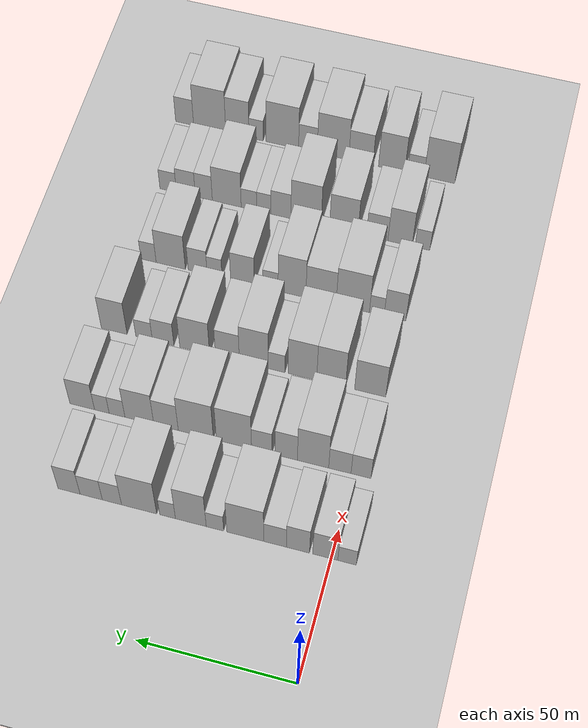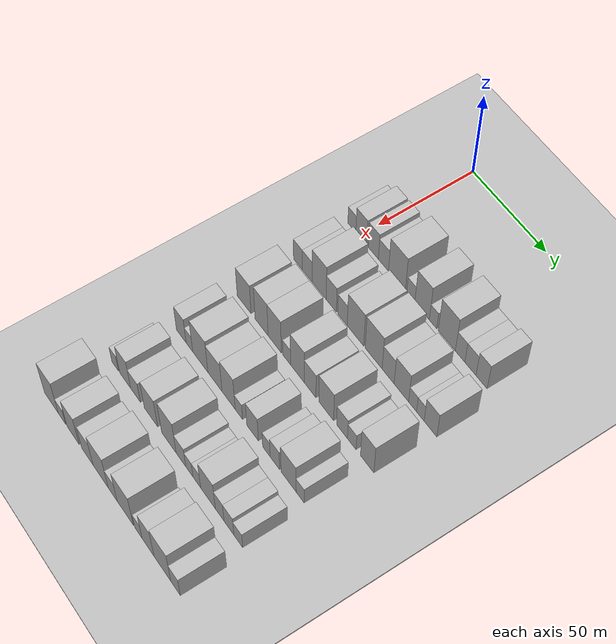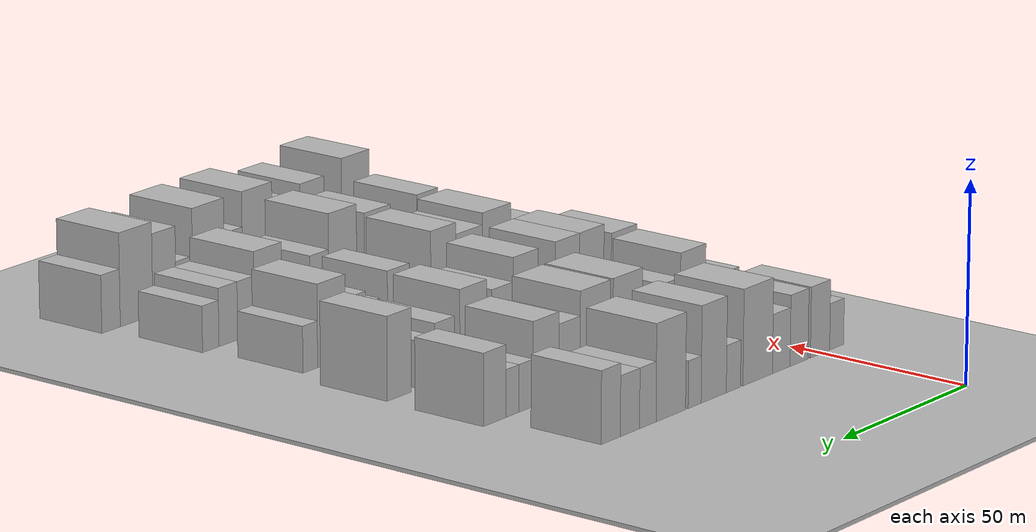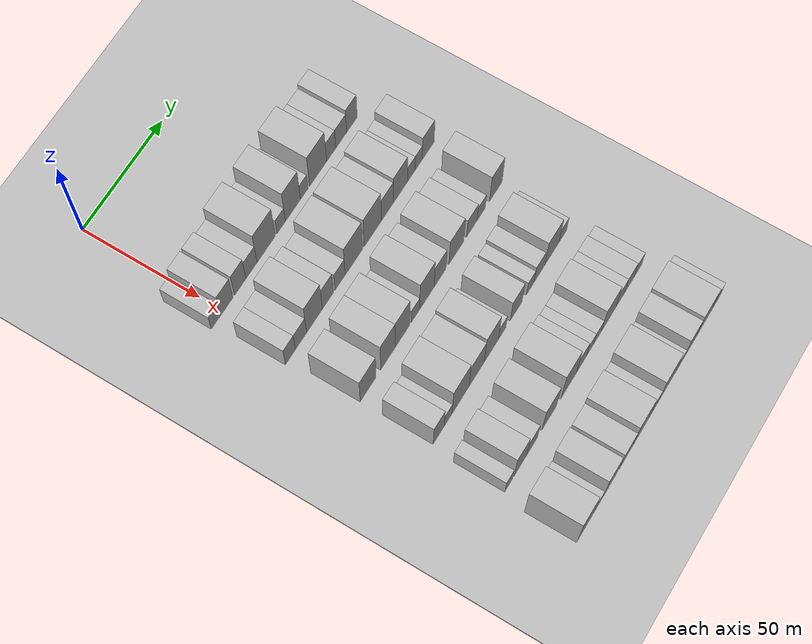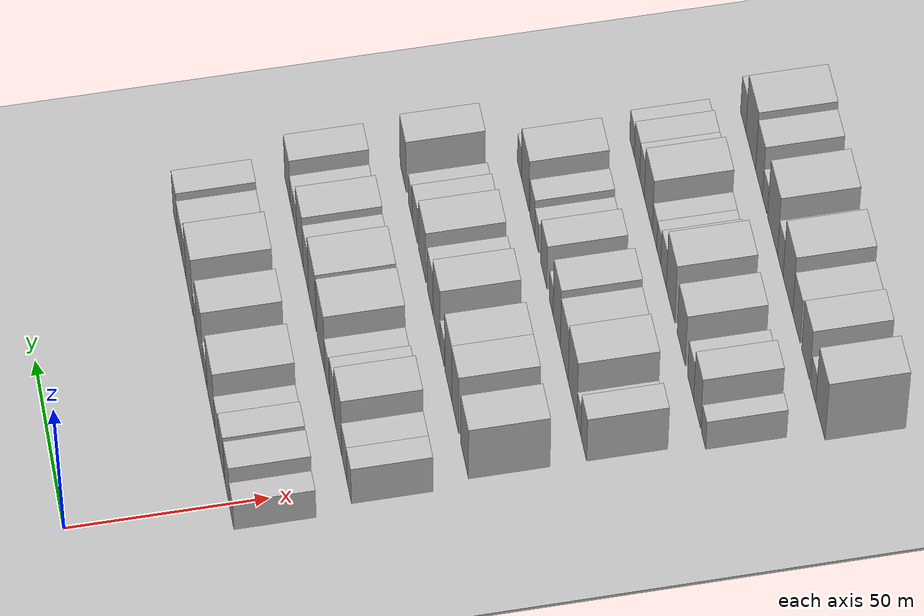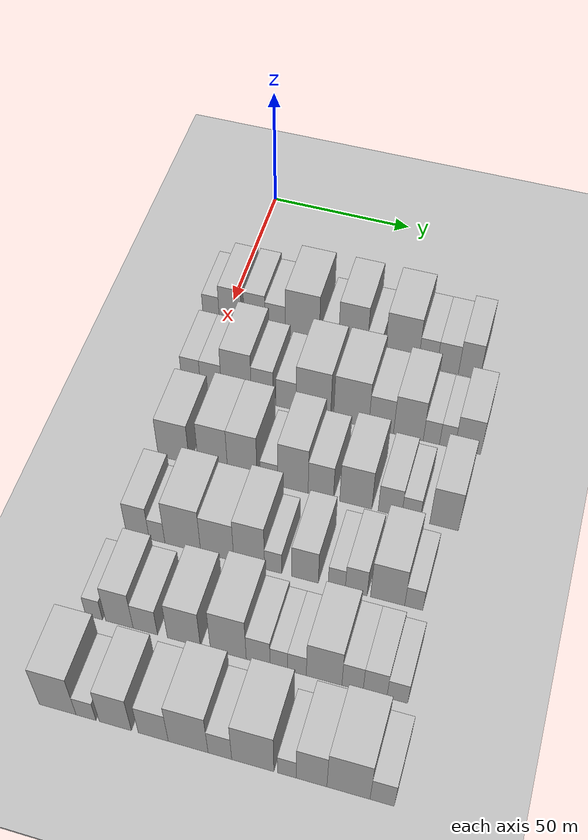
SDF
<sdf version="1.6">
 <world name="default">
  <include><name>ground_plane_1</name><uri>model://HANNAS_ground_plane</uri></include>
  <include>
   <name>ground_plane_2</name>
   <uri>model://HANNAS_ground_plane</uri>
   <pose>100 0 0  0 0 0</pose>
  </include>
  <model name="building_57">
   <static>1</static>
   <pose>50.0000 -4.9211 0 0.000000 0.000000 0.000000</pose>
   <link name="link">
    <pose>0 0 6.00 0 0 0</pose>
    <collision name="collision"><geometry><box><size>20.0000 5.8130 12.0000</size></box></geometry></collision>
    <visual name="visual">
     <cast_shadows>0</cast_shadows>
     <geometry><box><size>20.0000 5.8130 12.0000</size></box></geometry>
     <material>
      <script>
       <uri>model://HANNAS_wall/materials/scripts</uri>
       <uri>model://HANNAS_wall/materials/textures</uri>
       <name>vrc/HANNAS_wall</name>
      </script>
     </material>
    </visual>
   </link>
  </model>
  <model name="building_58">
   <static>1</static>
   <pose>50.0000 1.9506 0 0.000000 0.000000 0.000000</pose>
   <link name="link">
    <pose>0 0 9.00 0 0 0</pose>
    <collision name="collision"><geometry><box><size>20.0000 7.9304 18.0000</size></box></geometry></collision>
    <visual name="visual">
     <cast_shadows>0</cast_shadows>
     <geometry><box><size>20.0000 7.9304 18.0000</size></box></geometry>
     <material>
      <script>
       <uri>model://HANNAS_wall/materials/scripts</uri>
       <uri>model://HANNAS_wall/materials/textures</uri>
       <name>vrc/HANNAS_wall</name>
      </script>
     </material>
    </visual>
   </link>
  </model>
  <model name="building_59">
   <static>1</static>
   <pose>50.0000 10.5817 0 0.000000 0.000000 0.000000</pose>
   <link name="link">
    <pose>0 0 9.00 0 0 0</pose>
    <collision name="collision"><geometry><box><size>20.0000 7.3317 18.0000</size></box></geometry></collision>
    <visual name="visual">
     <cast_shadows>0</cast_shadows>
     <geometry><box><size>20.0000 7.3317 18.0000</size></box></geometry>
     <material>
      <script>
       <uri>model://HANNAS_wall/materials/scripts</uri>
       <uri>model://HANNAS_wall/materials/textures</uri>
       <name>vrc/HANNAS_wall</name>
      </script>
     </material>
    </visual>
   </link>
  </model>
  <model name="building_60">
   <static>1</static>
   <pose>50.0000 17.8337 0 0.000000 0.000000 0.000000</pose>
   <link name="link">
    <pose>0 0 7.50 0 0 0</pose>
    <collision name="collision"><geometry><box><size>20.0000 7.1722 15.0000</size></box></geometry></collision>
    <visual name="visual">
     <cast_shadows>0</cast_shadows>
     <geometry><box><size>20.0000 7.1722 15.0000</size></box></geometry>
     <material>
      <script>
       <uri>model://HANNAS_wall/materials/scripts</uri>
       <uri>model://HANNAS_wall/materials/textures</uri>
       <name>vrc/HANNAS_wall</name>
      </script>
     </material>
    </visual>
   </link>
  </model>
  <model name="building_61">
   <static>1</static>
   <pose>50.0000 27.3216 0 0.000000 0.000000 0.000000</pose>
   <link name="link">
    <pose>0 0 12.00 0 0 0</pose>
    <collision name="collision"><geometry><box><size>20.0000 11.8038 24.0000</size></box></geometry></collision>
    <visual name="visual">
     <cast_shadows>0</cast_shadows>
     <geometry><box><size>20.0000 11.8038 24.0000</size></box></geometry>
     <material>
      <script>
       <uri>model://HANNAS_wall/materials/scripts</uri>
       <uri>model://HANNAS_wall/materials/textures</uri>
       <name>vrc/HANNAS_wall</name>
      </script>
     </material>
    </visual>
   </link>
  </model>
  <model name="building_62">
   <static>1</static>
   <pose>50.0000 37.0348 0 0.000000 0.000000 0.000000</pose>
   <link name="link">
    <pose>0 0 6.00 0 0 0</pose>
    <collision name="collision"><geometry><box><size>20.0000 5.6224 12.0000</size></box></geometry></collision>
    <visual name="visual">
     <cast_shadows>0</cast_shadows>
     <geometry><box><size>20.0000 5.6224 12.0000</size></box></geometry>
     <material>
      <script>
       <uri>model://HANNAS_wall/materials/scripts</uri>
       <uri>model://HANNAS_wall/materials/textures</uri>
       <name>vrc/HANNAS_wall</name>
      </script>
     </material>
    </visual>
   </link>
  </model>
  <model name="building_63">
   <static>1</static>
   <pose>50.0000 44.8088 0 0.000000 0.000000 0.000000</pose>
   <link name="link">
    <pose>0 0 12.00 0 0 0</pose>
    <collision name="collision"><geometry><box><size>20.0000 9.9257 24.0000</size></box></geometry></collision>
    <visual name="visual">
     <cast_shadows>0</cast_shadows>
     <geometry><box><size>20.0000 9.9257 24.0000</size></box></geometry>
     <material>
      <script>
       <uri>model://HANNAS_wall/materials/scripts</uri>
       <uri>model://HANNAS_wall/materials/textures</uri>
       <name>vrc/HANNAS_wall</name>
      </script>
     </material>
    </visual>
   </link>
  </model>
  <model name="building_64">
   <static>1</static>
   <pose>50.0000 52.3100 0 0.000000 0.000000 0.000000</pose>
   <link name="link">
    <pose>0 0 6.00 0 0 0</pose>
    <collision name="collision"><geometry><box><size>20.0000 5.0767 12.0000</size></box></geometry></collision>
    <visual name="visual">
     <cast_shadows>0</cast_shadows>
     <geometry><box><size>20.0000 5.0767 12.0000</size></box></geometry>
     <material>
      <script>
       <uri>model://HANNAS_wall/materials/scripts</uri>
       <uri>model://HANNAS_wall/materials/textures</uri>
       <name>vrc/HANNAS_wall</name>
      </script>
     </material>
    </visual>
   </link>
  </model>
  <model name="building_65">
   <static>1</static>
   <pose>50.0000 61.5633 0 0.000000 0.000000 0.000000</pose>
   <link name="link">
    <pose>0 0 12.00 0 0 0</pose>
    <collision name="collision"><geometry><box><size>20.0000 11.4299 24.0000</size></box></geometry></collision>
    <visual name="visual">
     <cast_shadows>0</cast_shadows>
     <geometry><box><size>20.0000 11.4299 24.0000</size></box></geometry>
     <material>
      <script>
       <uri>model://HANNAS_wall/materials/scripts</uri>
       <uri>model://HANNAS_wall/materials/textures</uri>
       <name>vrc/HANNAS_wall</name>
      </script>
     </material>
    </visual>
   </link>
  </model>
  <model name="building_66">
   <static>1</static>
   <pose>50.0000 70.4179 0 0.000000 0.000000 0.000000</pose>
   <link name="link">
    <pose>0 0 7.50 0 0 0</pose>
    <collision name="collision"><geometry><box><size>20.0000 6.2793 15.0000</size></box></geometry></collision>
    <visual name="visual">
     <cast_shadows>0</cast_shadows>
     <geometry><box><size>20.0000 6.2793 15.0000</size></box></geometry>
     <material>
      <script>
       <uri>model://HANNAS_wall/materials/scripts</uri>
       <uri>model://HANNAS_wall/materials/textures</uri>
       <name>vrc/HANNAS_wall</name>
      </script>
     </material>
    </visual>
   </link>
  </model>
  <model name="building_67">
   <static>1</static>
   <pose>50.0000 77.2101 0 0.000000 0.000000 0.000000</pose>
   <link name="link">
    <pose>0 0 7.50 0 0 0</pose>
    <collision name="collision"><geometry><box><size>20.0000 7.3051 15.0000</size></box></geometry></collision>
    <visual name="visual">
     <cast_shadows>0</cast_shadows>
     <geometry><box><size>20.0000 7.3051 15.0000</size></box></geometry>
     <material>
      <script>
       <uri>model://HANNAS_wall/materials/scripts</uri>
       <uri>model://HANNAS_wall/materials/textures</uri>
       <name>vrc/HANNAS_wall</name>
      </script>
     </material>
    </visual>
   </link>
  </model>
  <model name="building_68">
   <static>1</static>
   <pose>50.0000 84.4827 0 0.000000 0.000000 0.000000</pose>
   <link name="link">
    <pose>0 0 9.00 0 0 0</pose>
    <collision name="collision"><geometry><box><size>20.0000 7.2401 18.0000</size></box></geometry></collision>
    <visual name="visual">
     <cast_shadows>0</cast_shadows>
     <geometry><box><size>20.0000 7.2401 18.0000</size></box></geometry>
     <material>
      <script>
       <uri>model://HANNAS_wall/materials/scripts</uri>
       <uri>model://HANNAS_wall/materials/textures</uri>
       <name>vrc/HANNAS_wall</name>
      </script>
     </material>
    </visual>
   </link>
  </model>
  <model name="building_172">
   <static>1</static>
   <pose>79.0000 -2.2111 0 0.000000 0.000000 0.000000</pose>
   <link name="link">
    <pose>0 0 7.50 0 0 0</pose>
    <collision name="collision"><geometry><box><size>20.0000 6.4304 15.0000</size></box></geometry></collision>
    <visual name="visual">
     <cast_shadows>0</cast_shadows>
     <geometry><box><size>20.0000 6.4304 15.0000</size></box></geometry>
     <material>
      <script>
       <uri>model://HANNAS_wall/materials/scripts</uri>
       <uri>model://HANNAS_wall/materials/textures</uri>
       <name>vrc/HANNAS_wall</name>
      </script>
     </material>
    </visual>
   </link>
  </model>
  <model name="building_173">
   <static>1</static>
   <pose>79.0000 4.6303 0 0.000000 0.000000 0.000000</pose>
   <link name="link">
    <pose>0 0 7.50 0 0 0</pose>
    <collision name="collision"><geometry><box><size>20.0000 7.2525 15.0000</size></box></geometry></collision>
    <visual name="visual">
     <cast_shadows>0</cast_shadows>
     <geometry><box><size>20.0000 7.2525 15.0000</size></box></geometry>
     <material>
      <script>
       <uri>model://HANNAS_wall/materials/scripts</uri>
       <uri>model://HANNAS_wall/materials/textures</uri>
       <name>vrc/HANNAS_wall</name>
      </script>
     </material>
    </visual>
   </link>
  </model>
  <model name="building_174">
   <static>1</static>
   <pose>79.0000 13.3536 0 0.000000 0.000000 0.000000</pose>
   <link name="link">
    <pose>0 0 12.00 0 0 0</pose>
    <collision name="collision"><geometry><box><size>20.0000 10.1941 24.0000</size></box></geometry></collision>
    <visual name="visual">
     <cast_shadows>0</cast_shadows>
     <geometry><box><size>20.0000 10.1941 24.0000</size></box></geometry>
     <material>
      <script>
       <uri>model://HANNAS_wall/materials/scripts</uri>
       <uri>model://HANNAS_wall/materials/textures</uri>
       <name>vrc/HANNAS_wall</name>
      </script>
     </material>
    </visual>
   </link>
  </model>
  <model name="building_175">
   <static>1</static>
   <pose>79.0000 22.0993 0 0.000000 0.000000 0.000000</pose>
   <link name="link">
    <pose>0 0 9.00 0 0 0</pose>
    <collision name="collision"><geometry><box><size>20.0000 7.2972 18.0000</size></box></geometry></collision>
    <visual name="visual">
     <cast_shadows>0</cast_shadows>
     <geometry><box><size>20.0000 7.2972 18.0000</size></box></geometry>
     <material>
      <script>
       <uri>model://HANNAS_wall/materials/scripts</uri>
       <uri>model://HANNAS_wall/materials/textures</uri>
       <name>vrc/HANNAS_wall</name>
      </script>
     </material>
    </visual>
   </link>
  </model>
  <model name="building_176">
   <static>1</static>
   <pose>79.0000 30.0986 0 0.000000 0.000000 0.000000</pose>
   <link name="link">
    <pose>0 0 7.50 0 0 0</pose>
    <collision name="collision"><geometry><box><size>20.0000 6.7013 15.0000</size></box></geometry></collision>
    <visual name="visual">
     <cast_shadows>0</cast_shadows>
     <geometry><box><size>20.0000 6.7013 15.0000</size></box></geometry>
     <material>
      <script>
       <uri>model://HANNAS_wall/materials/scripts</uri>
       <uri>model://HANNAS_wall/materials/textures</uri>
       <name>vrc/HANNAS_wall</name>
      </script>
     </material>
    </visual>
   </link>
  </model>
  <model name="building_177">
   <static>1</static>
   <pose>79.0000 39.2421 0 0.000000 0.000000 0.000000</pose>
   <link name="link">
    <pose>0 0 12.00 0 0 0</pose>
    <collision name="collision"><geometry><box><size>20.0000 11.5858 24.0000</size></box></geometry></collision>
    <visual name="visual">
     <cast_shadows>0</cast_shadows>
     <geometry><box><size>20.0000 11.5858 24.0000</size></box></geometry>
     <material>
      <script>
       <uri>model://HANNAS_wall/materials/scripts</uri>
       <uri>model://HANNAS_wall/materials/textures</uri>
       <name>vrc/HANNAS_wall</name>
      </script>
     </material>
    </visual>
   </link>
  </model>
  <model name="building_178">
   <static>1</static>
   <pose>79.0000 51.8660 0 0.000000 0.000000 0.000000</pose>
   <link name="link">
    <pose>0 0 12.00 0 0 0</pose>
    <collision name="collision"><geometry><box><size>20.0000 11.6620 24.0000</size></box></geometry></collision>
    <visual name="visual">
     <cast_shadows>0</cast_shadows>
     <geometry><box><size>20.0000 11.6620 24.0000</size></box></geometry>
     <material>
      <script>
       <uri>model://HANNAS_wall/materials/scripts</uri>
       <uri>model://HANNAS_wall/materials/textures</uri>
       <name>vrc/HANNAS_wall</name>
      </script>
     </material>
    </visual>
   </link>
  </model>
  <model name="building_179">
   <static>1</static>
   <pose>79.0000 61.7775 0 0.000000 0.000000 0.000000</pose>
   <link name="link">
    <pose>0 0 9.00 0 0 0</pose>
    <collision name="collision"><geometry><box><size>20.0000 8.1610 18.0000</size></box></geometry></collision>
    <visual name="visual">
     <cast_shadows>0</cast_shadows>
     <geometry><box><size>20.0000 8.1610 18.0000</size></box></geometry>
     <material>
      <script>
       <uri>model://HANNAS_wall/materials/scripts</uri>
       <uri>model://HANNAS_wall/materials/textures</uri>
       <name>vrc/HANNAS_wall</name>
      </script>
     </material>
    </visual>
   </link>
  </model>
  <model name="building_180">
   <static>1</static>
   <pose>79.0000 70.7115 0 0.000000 0.000000 0.000000</pose>
   <link name="link">
    <pose>0 0 10.50 0 0 0</pose>
    <collision name="collision"><geometry><box><size>20.0000 9.7070 21.0000</size></box></geometry></collision>
    <visual name="visual">
     <cast_shadows>0</cast_shadows>
     <geometry><box><size>20.0000 9.7070 21.0000</size></box></geometry>
     <material>
      <script>
       <uri>model://HANNAS_wall/materials/scripts</uri>
       <uri>model://HANNAS_wall/materials/textures</uri>
       <name>vrc/HANNAS_wall</name>
      </script>
     </material>
    </visual>
   </link>
  </model>
  <model name="building_181">
   <static>1</static>
   <pose>79.0000 78.2167 0 0.000000 0.000000 0.000000</pose>
   <link name="link">
    <pose>0 0 6.00 0 0 0</pose>
    <collision name="collision"><geometry><box><size>20.0000 5.3035 12.0000</size></box></geometry></collision>
    <visual name="visual">
     <cast_shadows>0</cast_shadows>
     <geometry><box><size>20.0000 5.3035 12.0000</size></box></geometry>
     <material>
      <script>
       <uri>model://HANNAS_wall/materials/scripts</uri>
       <uri>model://HANNAS_wall/materials/textures</uri>
       <name>vrc/HANNAS_wall</name>
      </script>
     </material>
    </visual>
   </link>
  </model>
  <model name="building_182">
   <static>1</static>
   <pose>79.0000 83.3363 0 0.000000 0.000000 0.000000</pose>
   <link name="link">
    <pose>0 0 6.00 0 0 0</pose>
    <collision name="collision"><geometry><box><size>20.0000 4.9357 12.0000</size></box></geometry></collision>
    <visual name="visual">
     <cast_shadows>0</cast_shadows>
     <geometry><box><size>20.0000 4.9357 12.0000</size></box></geometry>
     <material>
      <script>
       <uri>model://HANNAS_wall/materials/scripts</uri>
       <uri>model://HANNAS_wall/materials/textures</uri>
       <name>vrc/HANNAS_wall</name>
      </script>
     </material>
    </visual>
   </link>
  </model>
  <model name="building_183">
   <static>1</static>
   <pose>79.0000 89.9729 0 0.000000 0.000000 0.000000</pose>
   <link name="link">
    <pose>0 0 9.00 0 0 0</pose>
    <collision name="collision"><geometry><box><size>20.0000 8.3376 18.0000</size></box></geometry></collision>
    <visual name="visual">
     <cast_shadows>0</cast_shadows>
     <geometry><box><size>20.0000 8.3376 18.0000</size></box></geometry>
     <material>
      <script>
       <uri>model://HANNAS_wall/materials/scripts</uri>
       <uri>model://HANNAS_wall/materials/textures</uri>
       <name>vrc/HANNAS_wall</name>
      </script>
     </material>
    </visual>
   </link>
  </model>
  <model name="building_287">
   <static>1</static>
   <pose>108.0000 1.8354 0 0.000000 0.000000 0.000000</pose>
   <link name="link">
    <pose>0 0 10.50 0 0 0</pose>
    <collision name="collision"><geometry><box><size>20.0000 10.3521 21.0000</size></box></geometry></collision>
    <visual name="visual">
     <cast_shadows>0</cast_shadows>
     <geometry><box><size>20.0000 10.3521 21.0000</size></box></geometry>
     <material>
      <script>
       <uri>model://HANNAS_wall/materials/scripts</uri>
       <uri>model://HANNAS_wall/materials/textures</uri>
       <name>vrc/HANNAS_wall</name>
      </script>
     </material>
    </visual>
   </link>
  </model>
  <model name="building_288">
   <static>1</static>
   <pose>108.0000 14.8336 0 0.000000 0.000000 0.000000</pose>
   <link name="link">
    <pose>0 0 12.00 0 0 0</pose>
    <collision name="collision"><geometry><box><size>20.0000 9.6443 24.0000</size></box></geometry></collision>
    <visual name="visual">
     <cast_shadows>0</cast_shadows>
     <geometry><box><size>20.0000 9.6443 24.0000</size></box></geometry>
     <material>
      <script>
       <uri>model://HANNAS_wall/materials/scripts</uri>
       <uri>model://HANNAS_wall/materials/textures</uri>
       <name>vrc/HANNAS_wall</name>
      </script>
     </material>
    </visual>
   </link>
  </model>
  <model name="building_289">
   <static>1</static>
   <pose>108.0000 24.4687 0 0.000000 0.000000 0.000000</pose>
   <link name="link">
    <pose>0 0 12.00 0 0 0</pose>
    <collision name="collision"><geometry><box><size>20.0000 9.6258 24.0000</size></box></geometry></collision>
    <visual name="visual">
     <cast_shadows>0</cast_shadows>
     <geometry><box><size>20.0000 9.6258 24.0000</size></box></geometry>
     <material>
      <script>
       <uri>model://HANNAS_wall/materials/scripts</uri>
       <uri>model://HANNAS_wall/materials/textures</uri>
       <name>vrc/HANNAS_wall</name>
      </script>
     </material>
    </visual>
   </link>
  </model>
  <model name="building_290">
   <static>1</static>
   <pose>108.0000 33.1079 0 0.000000 0.000000 0.000000</pose>
   <link name="link">
    <pose>0 0 6.00 0 0 0</pose>
    <collision name="collision"><geometry><box><size>20.0000 5.6525 12.0000</size></box></geometry></collision>
    <visual name="visual">
     <cast_shadows>0</cast_shadows>
     <geometry><box><size>20.0000 5.6525 12.0000</size></box></geometry>
     <material>
      <script>
       <uri>model://HANNAS_wall/materials/scripts</uri>
       <uri>model://HANNAS_wall/materials/textures</uri>
       <name>vrc/HANNAS_wall</name>
      </script>
     </material>
    </visual>
   </link>
  </model>
  <model name="building_291">
   <static>1</static>
   <pose>108.0000 40.8225 0 0.000000 0.000000 0.000000</pose>
   <link name="link">
    <pose>0 0 12.00 0 0 0</pose>
    <collision name="collision"><geometry><box><size>20.0000 9.7766 24.0000</size></box></geometry></collision>
    <visual name="visual">
     <cast_shadows>0</cast_shadows>
     <geometry><box><size>20.0000 9.7766 24.0000</size></box></geometry>
     <material>
      <script>
       <uri>model://HANNAS_wall/materials/scripts</uri>
       <uri>model://HANNAS_wall/materials/textures</uri>
       <name>vrc/HANNAS_wall</name>
      </script>
     </material>
    </visual>
   </link>
  </model>
  <model name="building_292">
   <static>1</static>
   <pose>108.0000 49.7684 0 0.000000 0.000000 0.000000</pose>
   <link name="link">
    <pose>0 0 9.00 0 0 0</pose>
    <collision name="collision"><geometry><box><size>20.0000 8.1152 18.0000</size></box></geometry></collision>
    <visual name="visual">
     <cast_shadows>0</cast_shadows>
     <geometry><box><size>20.0000 8.1152 18.0000</size></box></geometry>
     <material>
      <script>
       <uri>model://HANNAS_wall/materials/scripts</uri>
       <uri>model://HANNAS_wall/materials/textures</uri>
       <name>vrc/HANNAS_wall</name>
      </script>
     </material>
    </visual>
   </link>
  </model>
  <model name="building_293">
   <static>1</static>
   <pose>108.0000 60.9286 0 0.000000 0.000000 0.000000</pose>
   <link name="link">
    <pose>0 0 10.50 0 0 0</pose>
    <collision name="collision"><geometry><box><size>20.0000 10.2053 21.0000</size></box></geometry></collision>
    <visual name="visual">
     <cast_shadows>0</cast_shadows>
     <geometry><box><size>20.0000 10.2053 21.0000</size></box></geometry>
     <material>
      <script>
       <uri>model://HANNAS_wall/materials/scripts</uri>
       <uri>model://HANNAS_wall/materials/textures</uri>
       <name>vrc/HANNAS_wall</name>
      </script>
     </material>
    </visual>
   </link>
  </model>
  <model name="building_294">
   <static>1</static>
   <pose>108.0000 71.7322 0 0.000000 0.000000 0.000000</pose>
   <link name="link">
    <pose>0 0 7.50 0 0 0</pose>
    <collision name="collision"><geometry><box><size>20.0000 7.4018 15.0000</size></box></geometry></collision>
    <visual name="visual">
     <cast_shadows>0</cast_shadows>
     <geometry><box><size>20.0000 7.4018 15.0000</size></box></geometry>
     <material>
      <script>
       <uri>model://HANNAS_wall/materials/scripts</uri>
       <uri>model://HANNAS_wall/materials/textures</uri>
       <name>vrc/HANNAS_wall</name>
      </script>
     </material>
    </visual>
   </link>
  </model>
  <model name="building_295">
   <static>1</static>
   <pose>108.0000 78.3007 0 0.000000 0.000000 0.000000</pose>
   <link name="link">
    <pose>0 0 6.00 0 0 0</pose>
    <collision name="collision"><geometry><box><size>20.0000 5.7353 12.0000</size></box></geometry></collision>
    <visual name="visual">
     <cast_shadows>0</cast_shadows>
     <geometry><box><size>20.0000 5.7353 12.0000</size></box></geometry>
     <material>
      <script>
       <uri>model://HANNAS_wall/materials/scripts</uri>
       <uri>model://HANNAS_wall/materials/textures</uri>
       <name>vrc/HANNAS_wall</name>
      </script>
     </material>
    </visual>
   </link>
  </model>
  <model name="building_296">
   <static>1</static>
   <pose>108.0000 88.6247 0 0.000000 0.000000 0.000000</pose>
   <link name="link">
    <pose>0 0 10.50 0 0 0</pose>
    <collision name="collision"><geometry><box><size>20.0000 8.9126 21.0000</size></box></geometry></collision>
    <visual name="visual">
     <cast_shadows>0</cast_shadows>
     <geometry><box><size>20.0000 8.9126 21.0000</size></box></geometry>
     <material>
      <script>
       <uri>model://HANNAS_wall/materials/scripts</uri>
       <uri>model://HANNAS_wall/materials/textures</uri>
       <name>vrc/HANNAS_wall</name>
      </script>
     </material>
    </visual>
   </link>
  </model>
  <model name="building_400">
   <static>1</static>
   <pose>137.0000 0.3842 0 0.000000 0.000000 0.000000</pose>
   <link name="link">
    <pose>0 0 9.00 0 0 0</pose>
    <collision name="collision"><geometry><box><size>20.0000 7.3610 18.0000</size></box></geometry></collision>
    <visual name="visual">
     <cast_shadows>0</cast_shadows>
     <geometry><box><size>20.0000 7.3610 18.0000</size></box></geometry>
     <material>
      <script>
       <uri>model://HANNAS_wall/materials/scripts</uri>
       <uri>model://HANNAS_wall/materials/textures</uri>
       <name>vrc/HANNAS_wall</name>
      </script>
     </material>
    </visual>
   </link>
  </model>
  <model name="building_401">
   <static>1</static>
   <pose>137.0000 6.5764 0 0.000000 0.000000 0.000000</pose>
   <link name="link">
    <pose>0 0 6.00 0 0 0</pose>
    <collision name="collision"><geometry><box><size>20.0000 5.0234 12.0000</size></box></geometry></collision>
    <visual name="visual">
     <cast_shadows>0</cast_shadows>
     <geometry><box><size>20.0000 5.0234 12.0000</size></box></geometry>
     <material>
      <script>
       <uri>model://HANNAS_wall/materials/scripts</uri>
       <uri>model://HANNAS_wall/materials/textures</uri>
       <name>vrc/HANNAS_wall</name>
      </script>
     </material>
    </visual>
   </link>
  </model>
  <model name="building_402">
   <static>1</static>
   <pose>137.0000 14.7842 0 0.000000 0.000000 0.000000</pose>
   <link name="link">
    <pose>0 0 12.00 0 0 0</pose>
    <collision name="collision"><geometry><box><size>20.0000 11.3921 24.0000</size></box></geometry></collision>
    <visual name="visual">
     <cast_shadows>0</cast_shadows>
     <geometry><box><size>20.0000 11.3921 24.0000</size></box></geometry>
     <material>
      <script>
       <uri>model://HANNAS_wall/materials/scripts</uri>
       <uri>model://HANNAS_wall/materials/textures</uri>
       <name>vrc/HANNAS_wall</name>
      </script>
     </material>
    </visual>
   </link>
  </model>
  <model name="building_403">
   <static>1</static>
   <pose>137.0000 25.6810 0 0.000000 0.000000 0.000000</pose>
   <link name="link">
    <pose>0 0 10.50 0 0 0</pose>
    <collision name="collision"><geometry><box><size>20.0000 10.4016 21.0000</size></box></geometry></collision>
    <visual name="visual">
     <cast_shadows>0</cast_shadows>
     <geometry><box><size>20.0000 10.4016 21.0000</size></box></geometry>
     <material>
      <script>
       <uri>model://HANNAS_wall/materials/scripts</uri>
       <uri>model://HANNAS_wall/materials/textures</uri>
       <name>vrc/HANNAS_wall</name>
      </script>
     </material>
    </visual>
   </link>
  </model>
  <model name="building_404">
   <static>1</static>
   <pose>137.0000 35.6866 0 0.000000 0.000000 0.000000</pose>
   <link name="link">
    <pose>0 0 12.00 0 0 0</pose>
    <collision name="collision"><geometry><box><size>20.0000 9.6096 24.0000</size></box></geometry></collision>
    <visual name="visual">
     <cast_shadows>0</cast_shadows>
     <geometry><box><size>20.0000 9.6096 24.0000</size></box></geometry>
     <material>
      <script>
       <uri>model://HANNAS_wall/materials/scripts</uri>
       <uri>model://HANNAS_wall/materials/textures</uri>
       <name>vrc/HANNAS_wall</name>
      </script>
     </material>
    </visual>
   </link>
  </model>
  <model name="building_405">
   <static>1</static>
   <pose>137.0000 43.1371 0 0.000000 0.000000 0.000000</pose>
   <link name="link">
    <pose>0 0 6.00 0 0 0</pose>
    <collision name="collision"><geometry><box><size>20.0000 5.2912 12.0000</size></box></geometry></collision>
    <visual name="visual">
     <cast_shadows>0</cast_shadows>
     <geometry><box><size>20.0000 5.2912 12.0000</size></box></geometry>
     <material>
      <script>
       <uri>model://HANNAS_wall/materials/scripts</uri>
       <uri>model://HANNAS_wall/materials/textures</uri>
       <name>vrc/HANNAS_wall</name>
      </script>
     </material>
    </visual>
   </link>
  </model>
  <model name="building_406">
   <static>1</static>
   <pose>137.0000 52.9089 0 0.000000 0.000000 0.000000</pose>
   <link name="link">
    <pose>0 0 9.00 0 0 0</pose>
    <collision name="collision"><geometry><box><size>20.0000 8.2525 18.0000</size></box></geometry></collision>
    <visual name="visual">
     <cast_shadows>0</cast_shadows>
     <geometry><box><size>20.0000 8.2525 18.0000</size></box></geometry>
     <material>
      <script>
       <uri>model://HANNAS_wall/materials/scripts</uri>
       <uri>model://HANNAS_wall/materials/textures</uri>
       <name>vrc/HANNAS_wall</name>
      </script>
     </material>
    </visual>
   </link>
  </model>
  <model name="building_407">
   <static>1</static>
   <pose>137.0000 62.6436 0 0.000000 0.000000 0.000000</pose>
   <link name="link">
    <pose>0 0 6.00 0 0 0</pose>
    <collision name="collision"><geometry><box><size>20.0000 5.2169 12.0000</size></box></geometry></collision>
    <visual name="visual">
     <cast_shadows>0</cast_shadows>
     <geometry><box><size>20.0000 5.2169 12.0000</size></box></geometry>
     <material>
      <script>
       <uri>model://HANNAS_wall/materials/scripts</uri>
       <uri>model://HANNAS_wall/materials/textures</uri>
       <name>vrc/HANNAS_wall</name>
      </script>
     </material>
    </visual>
   </link>
  </model>
  <model name="building_408">
   <static>1</static>
   <pose>137.0000 68.5719 0 0.000000 0.000000 0.000000</pose>
   <link name="link">
    <pose>0 0 7.50 0 0 0</pose>
    <collision name="collision"><geometry><box><size>20.0000 6.6396 15.0000</size></box></geometry></collision>
    <visual name="visual">
     <cast_shadows>0</cast_shadows>
     <geometry><box><size>20.0000 6.6396 15.0000</size></box></geometry>
     <material>
      <script>
       <uri>model://HANNAS_wall/materials/scripts</uri>
       <uri>model://HANNAS_wall/materials/textures</uri>
       <name>vrc/HANNAS_wall</name>
      </script>
     </material>
    </visual>
   </link>
  </model>
  <model name="building_409">
   <static>1</static>
   <pose>137.0000 78.0478 0 0.000000 0.000000 0.000000</pose>
   <link name="link">
    <pose>0 0 10.50 0 0 0</pose>
    <collision name="collision"><geometry><box><size>20.0000 10.3122 21.0000</size></box></geometry></collision>
    <visual name="visual">
     <cast_shadows>0</cast_shadows>
     <geometry><box><size>20.0000 10.3122 21.0000</size></box></geometry>
     <material>
      <script>
       <uri>model://HANNAS_wall/materials/scripts</uri>
       <uri>model://HANNAS_wall/materials/textures</uri>
       <name>vrc/HANNAS_wall</name>
      </script>
     </material>
    </visual>
   </link>
  </model>
  <model name="building_410">
   <static>1</static>
   <pose>137.0000 85.9129 0 0.000000 0.000000 0.000000</pose>
   <link name="link">
    <pose>0 0 6.00 0 0 0</pose>
    <collision name="collision"><geometry><box><size>20.0000 5.4180 12.0000</size></box></geometry></collision>
    <visual name="visual">
     <cast_shadows>0</cast_shadows>
     <geometry><box><size>20.0000 5.4180 12.0000</size></box></geometry>
     <material>
      <script>
       <uri>model://HANNAS_wall/materials/scripts</uri>
       <uri>model://HANNAS_wall/materials/textures</uri>
       <name>vrc/HANNAS_wall</name>
      </script>
     </material>
    </visual>
   </link>
  </model>
  <model name="building_516">
   <static>1</static>
   <pose>166.0000 -2.4247 0 0.000000 0.000000 0.000000</pose>
   <link name="link">
    <pose>0 0 6.00 0 0 0</pose>
    <collision name="collision"><geometry><box><size>20.0000 5.1727 12.0000</size></box></geometry></collision>
    <visual name="visual">
     <cast_shadows>0</cast_shadows>
     <geometry><box><size>20.0000 5.1727 12.0000</size></box></geometry>
     <material>
      <script>
       <uri>model://HANNAS_wall/materials/scripts</uri>
       <uri>model://HANNAS_wall/materials/textures</uri>
       <name>vrc/HANNAS_wall</name>
      </script>
     </material>
    </visual>
   </link>
  </model>
  <model name="building_517">
   <static>1</static>
   <pose>166.0000 5.3880 0 0.000000 0.000000 0.000000</pose>
   <link name="link">
    <pose>0 0 10.50 0 0 0</pose>
    <collision name="collision"><geometry><box><size>20.0000 8.4526 21.0000</size></box></geometry></collision>
    <visual name="visual">
     <cast_shadows>0</cast_shadows>
     <geometry><box><size>20.0000 8.4526 21.0000</size></box></geometry>
     <material>
      <script>
       <uri>model://HANNAS_wall/materials/scripts</uri>
       <uri>model://HANNAS_wall/materials/textures</uri>
       <name>vrc/HANNAS_wall</name>
      </script>
     </material>
    </visual>
   </link>
  </model>
  <model name="building_518">
   <static>1</static>
   <pose>166.0000 13.3430 0 0.000000 0.000000 0.000000</pose>
   <link name="link">
    <pose>0 0 7.50 0 0 0</pose>
    <collision name="collision"><geometry><box><size>20.0000 7.4575 15.0000</size></box></geometry></collision>
    <visual name="visual">
     <cast_shadows>0</cast_shadows>
     <geometry><box><size>20.0000 7.4575 15.0000</size></box></geometry>
     <material>
      <script>
       <uri>model://HANNAS_wall/materials/scripts</uri>
       <uri>model://HANNAS_wall/materials/textures</uri>
       <name>vrc/HANNAS_wall</name>
      </script>
     </material>
    </visual>
   </link>
  </model>
  <model name="building_519">
   <static>1</static>
   <pose>166.0000 25.0847 0 0.000000 0.000000 0.000000</pose>
   <link name="link">
    <pose>0 0 10.50 0 0 0</pose>
    <collision name="collision"><geometry><box><size>20.0000 10.0259 21.0000</size></box></geometry></collision>
    <visual name="visual">
     <cast_shadows>0</cast_shadows>
     <geometry><box><size>20.0000 10.0259 21.0000</size></box></geometry>
     <material>
      <script>
       <uri>model://HANNAS_wall/materials/scripts</uri>
       <uri>model://HANNAS_wall/materials/textures</uri>
       <name>vrc/HANNAS_wall</name>
      </script>
     </material>
    </visual>
   </link>
  </model>
  <model name="building_520">
   <static>1</static>
   <pose>166.0000 38.4564 0 0.000000 0.000000 0.000000</pose>
   <link name="link">
    <pose>0 0 12.00 0 0 0</pose>
    <collision name="collision"><geometry><box><size>20.0000 10.7174 24.0000</size></box></geometry></collision>
    <visual name="visual">
     <cast_shadows>0</cast_shadows>
     <geometry><box><size>20.0000 10.7174 24.0000</size></box></geometry>
     <material>
      <script>
       <uri>model://HANNAS_wall/materials/scripts</uri>
       <uri>model://HANNAS_wall/materials/textures</uri>
       <name>vrc/HANNAS_wall</name>
      </script>
     </material>
    </visual>
   </link>
  </model>
  <model name="building_521">
   <static>1</static>
   <pose>166.0000 47.3487 0 0.000000 0.000000 0.000000</pose>
   <link name="link">
    <pose>0 0 7.50 0 0 0</pose>
    <collision name="collision"><geometry><box><size>20.0000 7.0672 15.0000</size></box></geometry></collision>
    <visual name="visual">
     <cast_shadows>0</cast_shadows>
     <geometry><box><size>20.0000 7.0672 15.0000</size></box></geometry>
     <material>
      <script>
       <uri>model://HANNAS_wall/materials/scripts</uri>
       <uri>model://HANNAS_wall/materials/textures</uri>
       <name>vrc/HANNAS_wall</name>
      </script>
     </material>
    </visual>
   </link>
  </model>
  <model name="building_522">
   <static>1</static>
   <pose>166.0000 53.4527 0 0.000000 0.000000 0.000000</pose>
   <link name="link">
    <pose>0 0 6.00 0 0 0</pose>
    <collision name="collision"><geometry><box><size>20.0000 5.1408 12.0000</size></box></geometry></collision>
    <visual name="visual">
     <cast_shadows>0</cast_shadows>
     <geometry><box><size>20.0000 5.1408 12.0000</size></box></geometry>
     <material>
      <script>
       <uri>model://HANNAS_wall/materials/scripts</uri>
       <uri>model://HANNAS_wall/materials/textures</uri>
       <name>vrc/HANNAS_wall</name>
      </script>
     </material>
    </visual>
   </link>
  </model>
  <model name="building_523">
   <static>1</static>
   <pose>166.0000 58.7892 0 0.000000 0.000000 0.000000</pose>
   <link name="link">
    <pose>0 0 6.00 0 0 0</pose>
    <collision name="collision"><geometry><box><size>20.0000 5.5322 12.0000</size></box></geometry></collision>
    <visual name="visual">
     <cast_shadows>0</cast_shadows>
     <geometry><box><size>20.0000 5.5322 12.0000</size></box></geometry>
     <material>
      <script>
       <uri>model://HANNAS_wall/materials/scripts</uri>
       <uri>model://HANNAS_wall/materials/textures</uri>
       <name>vrc/HANNAS_wall</name>
      </script>
     </material>
    </visual>
   </link>
  </model>
  <model name="building_524">
   <static>1</static>
   <pose>166.0000 66.7465 0 0.000000 0.000000 0.000000</pose>
   <link name="link">
    <pose>0 0 10.50 0 0 0</pose>
    <collision name="collision"><geometry><box><size>20.0000 10.3822 21.0000</size></box></geometry></collision>
    <visual name="visual">
     <cast_shadows>0</cast_shadows>
     <geometry><box><size>20.0000 10.3822 21.0000</size></box></geometry>
     <material>
      <script>
       <uri>model://HANNAS_wall/materials/scripts</uri>
       <uri>model://HANNAS_wall/materials/textures</uri>
       <name>vrc/HANNAS_wall</name>
      </script>
     </material>
    </visual>
   </link>
  </model>
  <model name="building_525">
   <static>1</static>
   <pose>166.0000 75.0002 0 0.000000 0.000000 0.000000</pose>
   <link name="link">
    <pose>0 0 7.50 0 0 0</pose>
    <collision name="collision"><geometry><box><size>20.0000 6.1253 15.0000</size></box></geometry></collision>
    <visual name="visual">
     <cast_shadows>0</cast_shadows>
     <geometry><box><size>20.0000 6.1253 15.0000</size></box></geometry>
     <material>
      <script>
       <uri>model://HANNAS_wall/materials/scripts</uri>
       <uri>model://HANNAS_wall/materials/textures</uri>
       <name>vrc/HANNAS_wall</name>
      </script>
     </material>
    </visual>
   </link>
  </model>
  <model name="building_526">
   <static>1</static>
   <pose>166.0000 81.4944 0 0.000000 0.000000 0.000000</pose>
   <link name="link">
    <pose>0 0 7.50 0 0 0</pose>
    <collision name="collision"><geometry><box><size>20.0000 6.8632 15.0000</size></box></geometry></collision>
    <visual name="visual">
     <cast_shadows>0</cast_shadows>
     <geometry><box><size>20.0000 6.8632 15.0000</size></box></geometry>
     <material>
      <script>
       <uri>model://HANNAS_wall/materials/scripts</uri>
       <uri>model://HANNAS_wall/materials/textures</uri>
       <name>vrc/HANNAS_wall</name>
      </script>
     </material>
    </visual>
   </link>
  </model>
  <model name="building_527">
   <static>1</static>
   <pose>166.0000 87.9122 0 0.000000 0.000000 0.000000</pose>
   <link name="link">
    <pose>0 0 6.00 0 0 0</pose>
    <collision name="collision"><geometry><box><size>20.0000 5.9724 12.0000</size></box></geometry></collision>
    <visual name="visual">
     <cast_shadows>0</cast_shadows>
     <geometry><box><size>20.0000 5.9724 12.0000</size></box></geometry>
     <material>
      <script>
       <uri>model://HANNAS_wall/materials/scripts</uri>
       <uri>model://HANNAS_wall/materials/textures</uri>
       <name>vrc/HANNAS_wall</name>
      </script>
     </material>
    </visual>
   </link>
  </model>
  <model name="building_629">
   <static>1</static>
   <pose>195.0000 -1.9919 0 0.000000 0.000000 0.000000</pose>
   <link name="link">
    <pose>0 0 12.00 0 0 0</pose>
    <collision name="collision"><geometry><box><size>20.0000 10.9723 24.0000</size></box></geometry></collision>
    <visual name="visual">
     <cast_shadows>0</cast_shadows>
     <geometry><box><size>20.0000 10.9723 24.0000</size></box></geometry>
     <material>
      <script>
       <uri>model://HANNAS_wall/materials/scripts</uri>
       <uri>model://HANNAS_wall/materials/textures</uri>
       <name>vrc/HANNAS_wall</name>
      </script>
     </material>
    </visual>
   </link>
  </model>
  <model name="building_630">
   <static>1</static>
   <pose>195.0000 6.4404 0 0.000000 0.000000 0.000000</pose>
   <link name="link">
    <pose>0 0 6.00 0 0 0</pose>
    <collision name="collision"><geometry><box><size>20.0000 5.8924 12.0000</size></box></geometry></collision>
    <visual name="visual">
     <cast_shadows>0</cast_shadows>
     <geometry><box><size>20.0000 5.8924 12.0000</size></box></geometry>
     <material>
      <script>
       <uri>model://HANNAS_wall/materials/scripts</uri>
       <uri>model://HANNAS_wall/materials/textures</uri>
       <name>vrc/HANNAS_wall</name>
      </script>
     </material>
    </visual>
   </link>
  </model>
  <model name="building_631">
   <static>1</static>
   <pose>195.0000 15.0975 0 0.000000 0.000000 0.000000</pose>
   <link name="link">
    <pose>0 0 10.50 0 0 0</pose>
    <collision name="collision"><geometry><box><size>20.0000 9.4217 21.0000</size></box></geometry></collision>
    <visual name="visual">
     <cast_shadows>0</cast_shadows>
     <geometry><box><size>20.0000 9.4217 21.0000</size></box></geometry>
     <material>
      <script>
       <uri>model://HANNAS_wall/materials/scripts</uri>
       <uri>model://HANNAS_wall/materials/textures</uri>
       <name>vrc/HANNAS_wall</name>
      </script>
     </material>
    </visual>
   </link>
  </model>
  <model name="building_632">
   <static>1</static>
   <pose>195.0000 26.1737 0 0.000000 0.000000 0.000000</pose>
   <link name="link">
    <pose>0 0 9.00 0 0 0</pose>
    <collision name="collision"><geometry><box><size>20.0000 8.7308 18.0000</size></box></geometry></collision>
    <visual name="visual">
     <cast_shadows>0</cast_shadows>
     <geometry><box><size>20.0000 8.7308 18.0000</size></box></geometry>
     <material>
      <script>
       <uri>model://HANNAS_wall/materials/scripts</uri>
       <uri>model://HANNAS_wall/materials/textures</uri>
       <name>vrc/HANNAS_wall</name>
      </script>
     </material>
    </visual>
   </link>
  </model>
  <model name="building_633">
   <static>1</static>
   <pose>195.0000 36.2578 0 0.000000 0.000000 0.000000</pose>
   <link name="link">
    <pose>0 0 12.00 0 0 0</pose>
    <collision name="collision"><geometry><box><size>20.0000 11.4373 24.0000</size></box></geometry></collision>
    <visual name="visual">
     <cast_shadows>0</cast_shadows>
     <geometry><box><size>20.0000 11.4373 24.0000</size></box></geometry>
     <material>
      <script>
       <uri>model://HANNAS_wall/materials/scripts</uri>
       <uri>model://HANNAS_wall/materials/textures</uri>
       <name>vrc/HANNAS_wall</name>
      </script>
     </material>
    </visual>
   </link>
  </model>
  <model name="building_634">
   <static>1</static>
   <pose>195.0000 45.3580 0 0.000000 0.000000 0.000000</pose>
   <link name="link">
    <pose>0 0 7.50 0 0 0</pose>
    <collision name="collision"><geometry><box><size>20.0000 6.7632 15.0000</size></box></geometry></collision>
    <visual name="visual">
     <cast_shadows>0</cast_shadows>
     <geometry><box><size>20.0000 6.7632 15.0000</size></box></geometry>
     <material>
      <script>
       <uri>model://HANNAS_wall/materials/scripts</uri>
       <uri>model://HANNAS_wall/materials/textures</uri>
       <name>vrc/HANNAS_wall</name>
      </script>
     </material>
    </visual>
   </link>
  </model>
  <model name="building_635">
   <static>1</static>
   <pose>195.0000 54.7097 0 0.000000 0.000000 0.000000</pose>
   <link name="link">
    <pose>0 0 12.00 0 0 0</pose>
    <collision name="collision"><geometry><box><size>20.0000 11.9401 24.0000</size></box></geometry></collision>
    <visual name="visual">
     <cast_shadows>0</cast_shadows>
     <geometry><box><size>20.0000 11.9401 24.0000</size></box></geometry>
     <material>
      <script>
       <uri>model://HANNAS_wall/materials/scripts</uri>
       <uri>model://HANNAS_wall/materials/textures</uri>
       <name>vrc/HANNAS_wall</name>
      </script>
     </material>
    </visual>
   </link>
  </model>
  <model name="building_636">
   <static>1</static>
   <pose>195.0000 64.2895 0 0.000000 0.000000 0.000000</pose>
   <link name="link">
    <pose>0 0 6.00 0 0 0</pose>
    <collision name="collision"><geometry><box><size>20.0000 5.2194 12.0000</size></box></geometry></collision>
    <visual name="visual">
     <cast_shadows>0</cast_shadows>
     <geometry><box><size>20.0000 5.2194 12.0000</size></box></geometry>
     <material>
      <script>
       <uri>model://HANNAS_wall/materials/scripts</uri>
       <uri>model://HANNAS_wall/materials/textures</uri>
       <name>vrc/HANNAS_wall</name>
      </script>
     </material>
    </visual>
   </link>
  </model>
  <model name="building_637">
   <static>1</static>
   <pose>195.0000 71.1930 0 0.000000 0.000000 0.000000</pose>
   <link name="link">
    <pose>0 0 10.50 0 0 0</pose>
    <collision name="collision"><geometry><box><size>20.0000 8.5876 21.0000</size></box></geometry></collision>
    <visual name="visual">
     <cast_shadows>0</cast_shadows>
     <geometry><box><size>20.0000 8.5876 21.0000</size></box></geometry>
     <material>
      <script>
       <uri>model://HANNAS_wall/materials/scripts</uri>
       <uri>model://HANNAS_wall/materials/textures</uri>
       <name>vrc/HANNAS_wall</name>
      </script>
     </material>
    </visual>
   </link>
  </model>
  <model name="building_638">
   <static>1</static>
   <pose>195.0000 81.4380 0 0.000000 0.000000 0.000000</pose>
   <link name="link">
    <pose>0 0 12.00 0 0 0</pose>
    <collision name="collision"><geometry><box><size>20.0000 11.9023 24.0000</size></box></geometry></collision>
    <visual name="visual">
     <cast_shadows>0</cast_shadows>
     <geometry><box><size>20.0000 11.9023 24.0000</size></box></geometry>
     <material>
      <script>
       <uri>model://HANNAS_wall/materials/scripts</uri>
       <uri>model://HANNAS_wall/materials/textures</uri>
       <name>vrc/HANNAS_wall</name>
      </script>
     </material>
    </visual>
   </link>
  </model>
  <model name="building_639">
   <static>1</static>
   <pose>195.0000 90.7180 0 0.000000 0.000000 0.000000</pose>
   <link name="link">
    <pose>0 0 7.50 0 0 0</pose>
    <collision name="collision"><geometry><box><size>20.0000 6.6578 15.0000</size></box></geometry></collision>
    <visual name="visual">
     <cast_shadows>0</cast_shadows>
     <geometry><box><size>20.0000 6.6578 15.0000</size></box></geometry>
     <material>
      <script>
       <uri>model://HANNAS_wall/materials/scripts</uri>
       <uri>model://HANNAS_wall/materials/textures</uri>
       <name>vrc/HANNAS_wall</name>
      </script>
     </material>
    </visual>
   </link>
  </model>
 </world>
</sdf>
